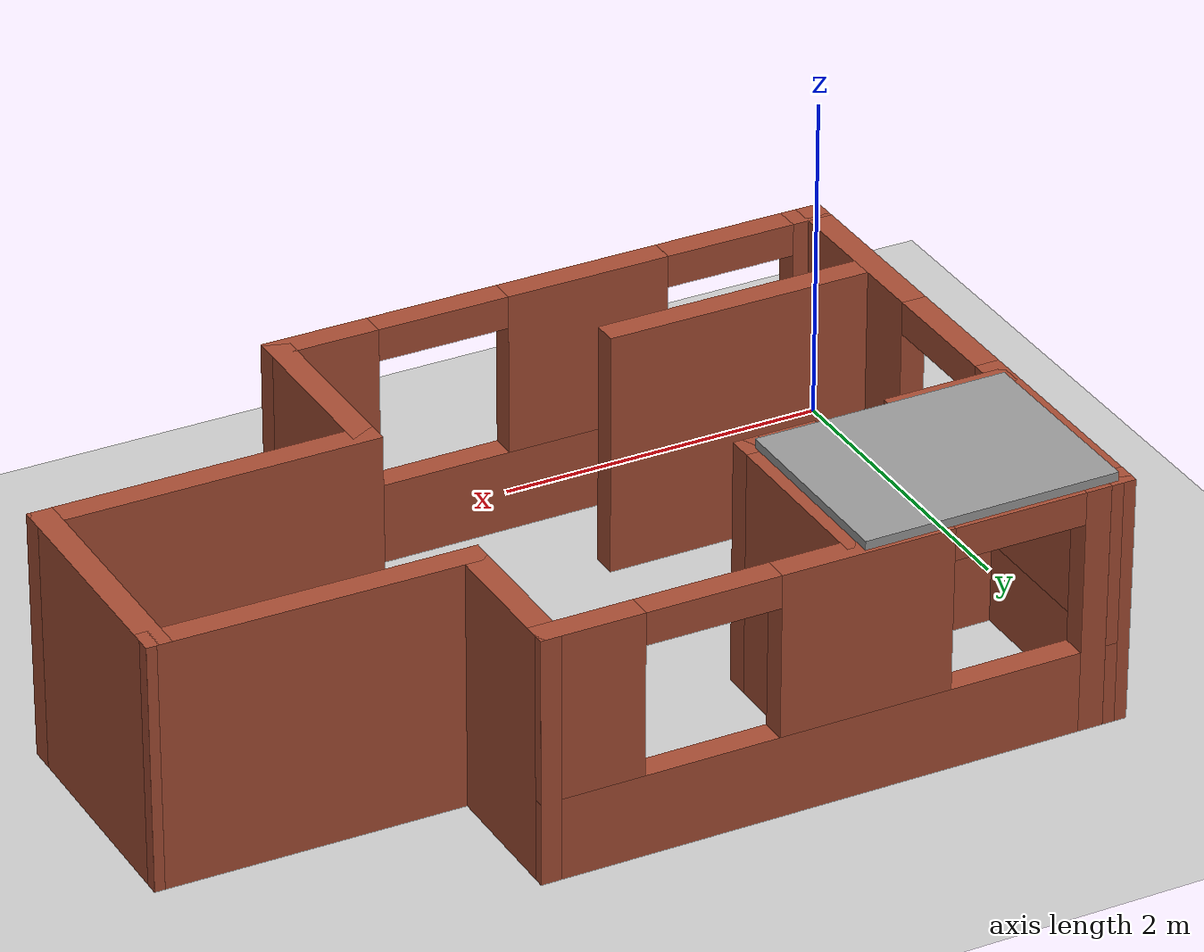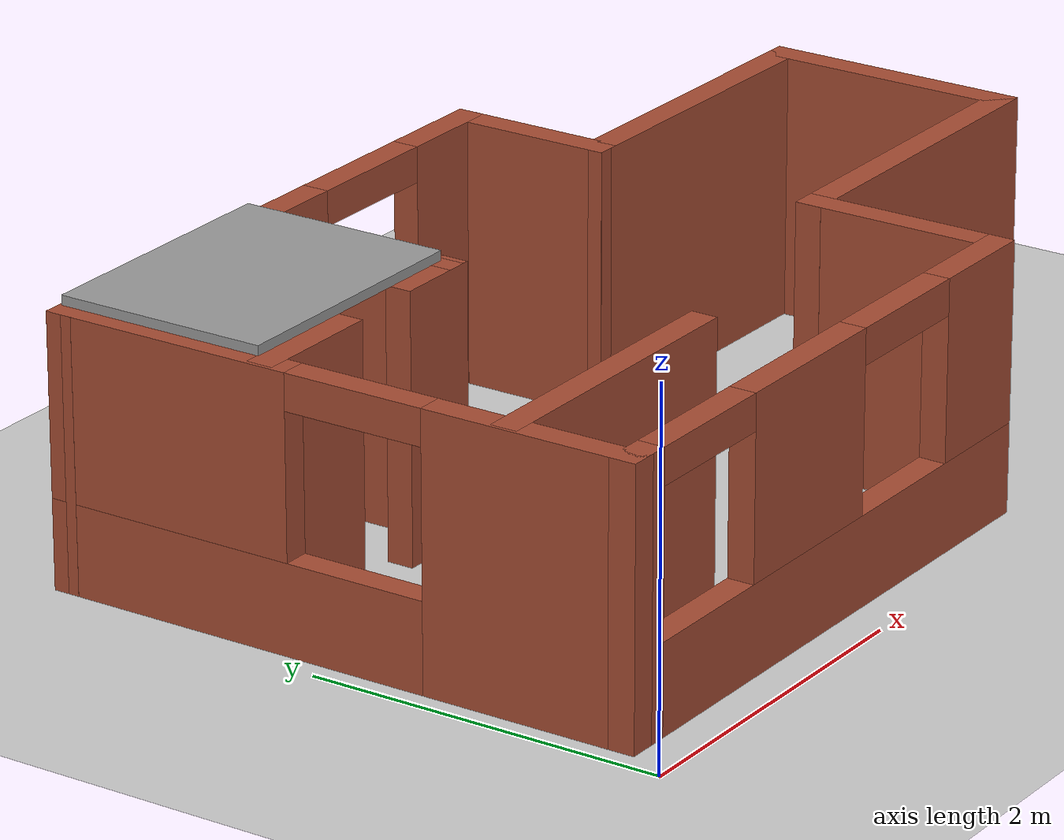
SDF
<sdf version="1.6">
 <world name="default">
  <light name="sun" type="directional">
   <pose>0 0 10 0 -0 0</pose>
   <diffuse>0.8 0.8 0.8 1</diffuse>
   <specular>0.2 0.2 0.2 1</specular>
   <attenuation>
    <range>1000</range>
    <constant>0.9</constant>
    <linear>0.01</linear>
    <quadratic>0.001</quadratic>
   </attenuation>
   <direction>-0.5 0.1 -0.9</direction>
   <spot><inner_angle>0</inner_angle><outer_angle>0</outer_angle><falloff>0</falloff></spot>
  </light>
  <model name="ground_plane">
   <static>1</static>
   <link name="link">
    <collision name="collision">
     <geometry><plane><normal>0 0 1</normal><size>100 100</size></plane></geometry>
     <surface><friction><ode><mu>100</mu><mu2>50</mu2></ode></friction></surface>
    </collision>
    <visual name="visual">
     <cast_shadows>0</cast_shadows>
     <geometry><plane><normal>0 0 1</normal><size>100 100</size></plane></geometry>
     <material>
      <script><uri>file://media/materials/scripts/gazebo.material</uri><name>Gazebo/Grey</name></script>
     </material>
    </visual>
   </link>
  </model>
  <gravity>0 0 -9.8</gravity>
  <magnetic_field>6e-06 2.3e-05 -4.2e-05</magnetic_field>
  <atmosphere type="adiabatic"/>
  <physics type="ode">
   <max_step_size>0.001</max_step_size>
   <real_time_factor>1</real_time_factor>
   <real_time_update_rate>1000</real_time_update_rate>
  </physics>
  <scene><ambient>0.4 0.4 0.4 1</ambient><background>0.7 0.7 0.7 1</background><shadows>1</shadows></scene>
  <audio><device>default</device></audio>
  <spherical_coordinates>
   <surface_model>EARTH_WGS84</surface_model>
   <latitude_deg>0</latitude_deg>
   <longitude_deg>0</longitude_deg>
   <elevation>0</elevation>
   <heading_deg>0</heading_deg>
  </spherical_coordinates>
  <model name="ekf_world">
   <pose>2.74297 1.83817 0 0 -0 0</pose>
   <link name="Wall_1">
    <pose>-0.877972 -1.54716 0 0 -0 0</pose>
    <visual name="Wall_1_Visual_0">
     <pose>-1.6264 0 0.75 0 -0 0</pose>
     <geometry><box><size>0.247193 0.15 1.5</size></box></geometry>
     <material>
      <script><uri>file://media/materials/scripts/gazebo.material</uri><name>Gazebo/Bricks</name></script>
      <ambient>1 1 1 1</ambient>
     </material>
     <meta><layer>0</layer></meta>
    </visual>
    <collision name="Wall_1_Collision_0">
     <geometry><box><size>0.247193 0.15 1.5</size></box></geometry>
     <pose>-1.6264 0 0.75 0 -0 0</pose>
    </collision>
    <visual name="Wall_1_Visual_1">
     <pose>0.123596 0 0.25 0 -0 0</pose>
     <geometry><box><size>3.25281 0.15 0.5</size></box></geometry>
     <material>
      <script><uri>file://media/materials/scripts/gazebo.material</uri><name>Gazebo/Bricks</name></script>
      <ambient>1 1 1 1</ambient>
     </material>
     <meta><layer>0</layer></meta>
    </visual>
    <collision name="Wall_1_Collision_1">
     <geometry><box><size>3.25281 0.15 0.5</size></box></geometry>
     <pose>0.123596 0 0.25 0 -0 0</pose>
    </collision>
    <visual name="Wall_1_Visual_2">
     <pose>-0.200057 0 1 0 -0 0</pose>
     <geometry><box><size>1.0055 0.15 1</size></box></geometry>
     <material>
      <script><uri>file://media/materials/scripts/gazebo.material</uri><name>Gazebo/Bricks</name></script>
      <ambient>1 1 1 1</ambient>
     </material>
     <meta><layer>0</layer></meta>
    </visual>
    <collision name="Wall_1_Collision_2">
     <geometry><box><size>1.0055 0.15 1</size></box></geometry>
     <pose>-0.200057 0 1 0 -0 0</pose>
    </collision>
    <visual name="Wall_1_Visual_3">
     <pose>1.42635 0 1 0 -0 0</pose>
     <geometry><box><size>0.647307 0.15 1</size></box></geometry>
     <material>
      <script><uri>file://media/materials/scripts/gazebo.material</uri><name>Gazebo/Bricks</name></script>
      <ambient>1 1 1 1</ambient>
     </material>
     <meta><layer>0</layer></meta>
    </visual>
    <collision name="Wall_1_Collision_3">
     <geometry><box><size>0.647307 0.15 1</size></box></geometry>
     <pose>1.42635 0 1 0 -0 0</pose>
    </collision>
    <visual name="Wall_1_Visual_4">
     <pose>-1.10281 0 1.4 0 -0 0</pose>
     <geometry><box><size>0.8 0.15 0.2</size></box></geometry>
     <material>
      <script><uri>file://media/materials/scripts/gazebo.material</uri><name>Gazebo/Bricks</name></script>
      <ambient>1 1 1 1</ambient>
     </material>
     <meta><layer>0</layer></meta>
    </visual>
    <collision name="Wall_1_Collision_4">
     <geometry><box><size>0.8 0.15 0.2</size></box></geometry>
     <pose>-1.10281 0 1.4 0 -0 0</pose>
    </collision>
    <visual name="Wall_1_Visual_5">
     <pose>0.702693 0 1.4 0 -0 0</pose>
     <geometry><box><size>0.8 0.15 0.2</size></box></geometry>
     <material>
      <script><uri>file://media/materials/scripts/gazebo.material</uri><name>Gazebo/Bricks</name></script>
      <ambient>1 1 1 1</ambient>
     </material>
     <meta><layer>0</layer></meta>
    </visual>
    <collision name="Wall_1_Collision_5">
     <geometry><box><size>0.8 0.15 0.2</size></box></geometry>
     <pose>0.702693 0 1.4 0 -0 0</pose>
    </collision>
   </link>
   <link name="Wall_13">
    <pose>-0.851472 1.75534 0 0 -0 -0.004408</pose>
    <visual name="Wall_13_Visual_0">
     <pose>-1.62483 0 0.75 0 -0 0</pose>
     <geometry><box><size>0.303266 0.15 1.5</size></box></geometry>
     <material>
      <script><uri>file://media/materials/scripts/gazebo.material</uri><name>Gazebo/Bricks</name></script>
      <ambient>1 1 1 1</ambient>
     </material>
     <meta><layer>0</layer></meta>
    </visual>
    <collision name="Wall_13_Collision_0">
     <geometry><box><size>0.303266 0.15 1.5</size></box></geometry>
     <pose>-1.62483 0 0.75 0 -0 0</pose>
    </collision>
    <visual name="Wall_13_Visual_1">
     <pose>0.151633 0 0.25 0 -0 0</pose>
     <geometry><box><size>3.24966 0.15 0.5</size></box></geometry>
     <material>
      <script><uri>file://media/materials/scripts/gazebo.material</uri><name>Gazebo/Bricks</name></script>
      <ambient>1 1 1 1</ambient>
     </material>
     <meta><layer>0</layer></meta>
    </visual>
    <collision name="Wall_13_Collision_1">
     <geometry><box><size>3.24966 0.15 0.5</size></box></geometry>
     <pose>0.151633 0 0.25 0 -0 0</pose>
    </collision>
    <visual name="Wall_13_Visual_2">
     <pose>-0.154818 0 1 0 -0 0</pose>
     <geometry><box><size>1.03676 0.15 1</size></box></geometry>
     <material>
      <script><uri>file://media/materials/scripts/gazebo.material</uri><name>Gazebo/Bricks</name></script>
      <ambient>1 1 1 1</ambient>
     </material>
     <meta><layer>0</layer></meta>
    </visual>
    <collision name="Wall_13_Collision_2">
     <geometry><box><size>1.03676 0.15 1</size></box></geometry>
     <pose>-0.154818 0 1 0 -0 0</pose>
    </collision>
    <visual name="Wall_13_Visual_3">
     <pose>1.47001 0 1 0 -0 0</pose>
     <geometry><box><size>0.612902 0.15 1</size></box></geometry>
     <material>
      <script><uri>file://media/materials/scripts/gazebo.material</uri><name>Gazebo/Bricks</name></script>
      <ambient>1 1 1 1</ambient>
     </material>
     <meta><layer>0</layer></meta>
    </visual>
    <collision name="Wall_13_Collision_3">
     <geometry><box><size>0.612902 0.15 1</size></box></geometry>
     <pose>1.47001 0 1 0 -0 0</pose>
    </collision>
    <visual name="Wall_13_Visual_4">
     <pose>-1.0732 0 1.4 0 -0 0</pose>
     <geometry><box><size>0.8 0.15 0.2</size></box></geometry>
     <material>
      <script><uri>file://media/materials/scripts/gazebo.material</uri><name>Gazebo/Bricks</name></script>
      <ambient>1 1 1 1</ambient>
     </material>
     <meta><layer>0</layer></meta>
    </visual>
    <collision name="Wall_13_Collision_4">
     <geometry><box><size>0.8 0.15 0.2</size></box></geometry>
     <pose>-1.0732 0 1.4 0 -0 0</pose>
    </collision>
    <visual name="Wall_13_Visual_5">
     <pose>0.76356 0 1.4 0 -0 0</pose>
     <geometry><box><size>0.8 0.15 0.2</size></box></geometry>
     <material>
      <script><uri>file://media/materials/scripts/gazebo.material</uri><name>Gazebo/Bricks</name></script>
      <ambient>1 1 1 1</ambient>
     </material>
     <meta><layer>0</layer></meta>
    </visual>
    <collision name="Wall_13_Collision_5">
     <geometry><box><size>0.8 0.15 0.2</size></box></geometry>
     <pose>0.76356 0 1.4 0 -0 0</pose>
    </collision>
   </link>
   <link name="Wall_15">
    <collision name="Wall_15_Collision">
     <geometry><box><size>1.25 0.15 1.5</size></box></geometry>
     <pose>0 0 0.75 0 -0 0</pose>
    </collision>
    <visual name="Wall_15_Visual">
     <pose>0 0 0.75 0 -0 0</pose>
     <geometry><box><size>1.25 0.15 1.5</size></box></geometry>
     <material>
      <script><uri>file://media/materials/scripts/gazebo.material</uri><name>Gazebo/Bricks</name></script>
      <ambient>1 1 1 1</ambient>
     </material>
     <meta><layer>0</layer></meta>
    </visual>
    <pose>-0.989972 1.13084 0 0 -0 -1.5708</pose>
   </link>
   <link name="Wall_16">
    <collision name="Wall_16_Collision">
     <geometry><box><size>0.5 0.15 1.5</size></box></geometry>
     <pose>0 0 0.75 0 -0 0</pose>
    </collision>
    <visual name="Wall_16_Visual">
     <pose>0 0 0.75 0 -0 0</pose>
     <geometry><box><size>0.5 0.15 1.5</size></box></geometry>
     <material>
      <script><uri>file://media/materials/scripts/gazebo.material</uri><name>Gazebo/Bricks</name></script>
      <ambient>1 1 1 1</ambient>
     </material>
     <meta><layer>0</layer></meta>
    </visual>
    <pose>-1.16497 0.580835 0 0 -0 3.14159</pose>
   </link>
   <link name="Wall_19">
    <collision name="Wall_19_Collision">
     <geometry><box><size>0.75 0.15 1.5</size></box></geometry>
     <pose>0 0 0.75 0 -0 0</pose>
    </collision>
    <visual name="Wall_19_Visual">
     <pose>0 0 0.75 0 -0 0</pose>
     <geometry><box><size>0.75 0.15 1.5</size></box></geometry>
     <material>
      <script><uri>file://media/materials/scripts/gazebo.material</uri><name>Gazebo/Bricks</name></script>
      <ambient>1 1 1 1</ambient>
     </material>
     <meta><layer>0</layer></meta>
    </visual>
    <pose>-2.23197 0.554835 0 0 -0 0</pose>
   </link>
   <link name="Wall_21">
    <collision name="Wall_21_Collision">
     <geometry><box><size>1.75 0.15 1.5</size></box></geometry>
     <pose>0 0 0.75 0 -0 0</pose>
    </collision>
    <visual name="Wall_21_Visual">
     <pose>0 0 0.75 0 -0 0</pose>
     <geometry><box><size>1.75 0.15 1.5</size></box></geometry>
     <material>
      <script><uri>file://media/materials/scripts/gazebo.material</uri><name>Gazebo/Bricks</name></script>
      <ambient>1 1 1 1</ambient>
     </material>
     <meta><layer>0</layer></meta>
    </visual>
    <pose>-1.73397 -0.868165 0 0 -0 0</pose>
   </link>
   <link name="Wall_3">
    <collision name="Wall_3_Collision">
     <geometry><box><size>1.2097 0.15 1.5</size></box></geometry>
     <pose>0 0 0.75 0 -0 0</pose>
    </collision>
    <visual name="Wall_3_Visual">
     <pose>0 0 0.75 0 -0 0</pose>
     <geometry><box><size>1.2097 0.15 1.5</size></box></geometry>
     <material>
      <script><uri>file://media/materials/scripts/gazebo.material</uri><name>Gazebo/Bricks</name></script>
      <ambient>1 1 1 1</ambient>
     </material>
     <meta><layer>0</layer></meta>
    </visual>
    <pose>0.797028 -1.01717 0 0 -0 1.5708</pose>
   </link>
   <link name="Wall_4">
    <collision name="Wall_4_Collision">
     <geometry><box><size>2.02096 0.15 1.5</size></box></geometry>
     <pose>0 0 0.75 0 -0 0</pose>
    </collision>
    <visual name="Wall_4_Visual">
     <pose>0 0 0.75 0 -0 0</pose>
     <geometry><box><size>2.02096 0.15 1.5</size></box></geometry>
     <material>
      <script><uri>file://media/materials/scripts/gazebo.material</uri><name>Gazebo/Bricks</name></script>
      <ambient>1 1 1 1</ambient>
     </material>
     <meta><layer>0</layer></meta>
    </visual>
    <pose>1.73203 -0.487165 0 0 -0 0</pose>
   </link>
   <link name="Wall_5">
    <collision name="Wall_5_Collision">
     <geometry><box><size>1.5097 0.15 1.5</size></box></geometry>
     <pose>0 0 0.75 0 -0 0</pose>
    </collision>
    <visual name="Wall_5_Visual">
     <pose>0 0 0.75 0 -0 0</pose>
     <geometry><box><size>1.5097 0.15 1.5</size></box></geometry>
     <material>
      <script><uri>file://media/materials/scripts/gazebo.material</uri><name>Gazebo/Bricks</name></script>
      <ambient>1 1 1 1</ambient>
     </material>
     <meta><layer>0</layer></meta>
    </visual>
    <pose>2.66703 0.192835 0 0 -0 1.5708</pose>
   </link>
   <link name="Wall_6">
    <collision name="Wall_6_Collision">
     <geometry><box><size>1.96735 0.15 1.5</size></box></geometry>
     <pose>0 0 0.75 0 -0 0</pose>
    </collision>
    <visual name="Wall_6_Visual">
     <pose>0 0 0.75 0 -0 0</pose>
     <geometry><box><size>1.96735 0.15 1.5</size></box></geometry>
     <material>
      <script><uri>file://media/materials/scripts/gazebo.material</uri><name>Gazebo/Bricks</name></script>
      <ambient>1 1 1 1</ambient>
     </material>
     <meta><layer>0</layer></meta>
    </visual>
    <pose>1.75853 0.882835 0 0 -0 3.13059</pose>
   </link>
   <link name="Wall_7">
    <collision name="Wall_7_Collision">
     <geometry><box><size>1.00542 0.15 1.5</size></box></geometry>
     <pose>0 0 0.75 0 -0 0</pose>
    </collision>
    <visual name="Wall_7_Visual">
     <pose>0 0 0.75 0 -0 0</pose>
     <geometry><box><size>1.00542 0.15 1.5</size></box></geometry>
     <material>
      <script><uri>file://media/materials/scripts/gazebo.material</uri><name>Gazebo/Bricks</name></script>
      <ambient>1 1 1 1</ambient>
     </material>
     <meta><layer>0</layer></meta>
    </visual>
    <pose>0.850028 1.32034 0 0 -0 1.5708</pose>
   </link>
   <link name="Wall_9">
    <pose>-2.55297 0.107835 0 0 -0 1.5708</pose>
    <visual name="Wall_9_Visual_0">
     <pose>-1.12218 0 0.75 0 -0 0</pose>
     <geometry><box><size>1.21565 0.15 1.5</size></box></geometry>
     <material>
      <script><uri>file://media/materials/scripts/gazebo.material</uri><name>Gazebo/Bricks</name></script>
      <ambient>1 1 1 1</ambient>
     </material>
     <meta><layer>0</layer></meta>
    </visual>
    <collision name="Wall_9_Collision_0">
     <geometry><box><size>1.21565 0.15 1.5</size></box></geometry>
     <pose>-1.12218 0 0.75 0 -0 0</pose>
    </collision>
    <visual name="Wall_9_Visual_1">
     <pose>0.607822 0 0.25 0 -0 0</pose>
     <geometry><box><size>2.24436 0.15 0.5</size></box></geometry>
     <material>
      <script><uri>file://media/materials/scripts/gazebo.material</uri><name>Gazebo/Bricks</name></script>
      <ambient>1 1 1 1</ambient>
     </material>
     <meta><layer>0</layer></meta>
    </visual>
    <collision name="Wall_9_Collision_1">
     <geometry><box><size>2.24436 0.15 0.5</size></box></geometry>
     <pose>0.607822 0 0.25 0 -0 0</pose>
    </collision>
    <visual name="Wall_9_Visual_2">
     <pose>1.00782 0 1 0 -0 0</pose>
     <geometry><box><size>1.44436 0.15 1</size></box></geometry>
     <material>
      <script><uri>file://media/materials/scripts/gazebo.material</uri><name>Gazebo/Bricks</name></script>
      <ambient>1 1 1 1</ambient>
     </material>
     <meta><layer>0</layer></meta>
    </visual>
    <collision name="Wall_9_Collision_2">
     <geometry><box><size>1.44436 0.15 1</size></box></geometry>
     <pose>1.00782 0 1 0 -0 0</pose>
    </collision>
    <visual name="Wall_9_Visual_3">
     <pose>-0.114355 0 1.4 0 -0 0</pose>
     <geometry><box><size>0.8 0.15 0.2</size></box></geometry>
     <material>
      <script><uri>file://media/materials/scripts/gazebo.material</uri><name>Gazebo/Bricks</name></script>
      <ambient>1 1 1 1</ambient>
     </material>
     <meta><layer>0</layer></meta>
    </visual>
    <collision name="Wall_9_Collision_3">
     <geometry><box><size>0.8 0.15 0.2</size></box></geometry>
     <pose>-0.114355 0 1.4 0 -0 0</pose>
    </collision>
   </link>
   <static>1</static>
  </model>
  <model name="ekf_roof">
   <link name="link_1">
    <inertial>
     <mass>0.0998279</mass>
     <inertia>
      <ixx>0.0120089</ixx>
      <ixy>0</ixy>
      <ixz>0</ixz>
      <iyy>0.0198229</iyy>
      <iyz>0</iyz>
      <izz>0.0317831</izz>
     </inertia>
    </inertial>
    <pose>0 3e-06 -3e-06 0 -0 0</pose>
    <visual name="visual">
     <geometry><box><size>1.5427 1.20026 0.054072</size></box></geometry>
     <material>
      <lighting>1</lighting>
      <script><uri>file://media/materials/scripts/gazebo.material</uri><name>Gazebo/Grey</name></script>
      <shader type="pixel"><normal_map>__default__</normal_map></shader>
     </material>
    </visual>
    <collision name="collision">
     <geometry><box><size>1.5427 1.20026 0.054072</size></box></geometry>
     <surface>
      <friction>
       <ode><mu>1</mu><mu2>1</mu2><fdir1>0 0 0</fdir1><slip1>0</slip1><slip2>0</slip2></ode>
       <torsional>
        <coefficient>1</coefficient>
        <patch_radius>0</patch_radius>
        <surface_radius>0</surface_radius>
        <use_patch_radius>1</use_patch_radius>
        <ode><slip>0</slip></ode>
       </torsional>
      </friction>
      <bounce><restitution_coefficient>0</restitution_coefficient><threshold>1e+06</threshold></bounce>
      <contact>
       <collide_without_contact>0</collide_without_contact>
       <collide_without_contact_bitmask>1</collide_without_contact_bitmask>
       <collide_bitmask>1</collide_bitmask>
       <ode>
        <soft_cfm>0</soft_cfm>
        <soft_erp>0.2</soft_erp>
        <kp>1e+13</kp>
        <kd>1</kd>
        <max_vel>0.01</max_vel>
        <min_depth>0</min_depth>
       </ode>
       <bullet>
        <split_impulse>1</split_impulse>
        <split_impulse_penetration_threshold>-0.01</split_impulse_penetration_threshold>
        <soft_cfm>0</soft_cfm>
        <soft_erp>0.2</soft_erp>
        <kp>1e+13</kp>
        <kd>1</kd>
       </bullet>
      </contact>
     </surface>
    </collision>
   </link>
   <static>0</static>
   <pose>0.981634 3.05216 1.53173 0 -0 0</pose>
  </model>
 </world>
</sdf>
